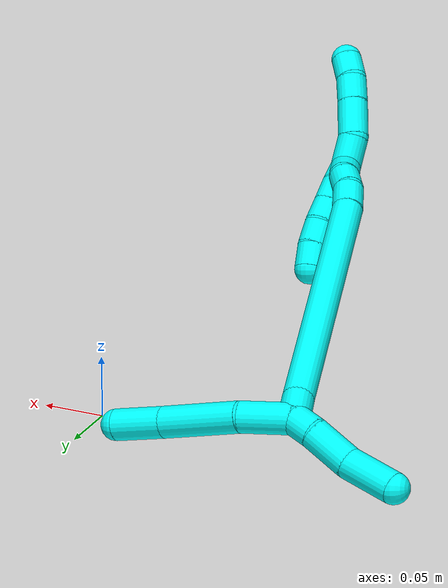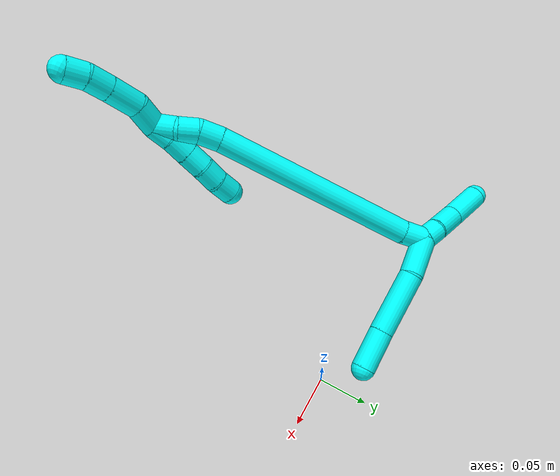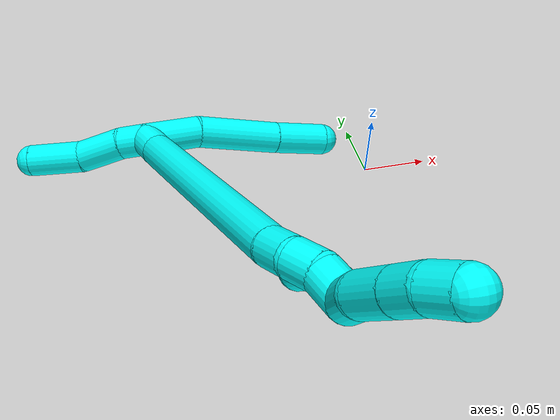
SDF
<sdf version="1.7">
 <world name="default">
  <model name="3">
   <static>0</static>
   <link name="3">
    <collision name="collision-cylinder-e_1_2_8">
     <pose>0.000321 -0.000112 -0.021295 3.13632 0.015067 2.46899</pose>
     <geometry><cylinder><radius>0.0125</radius><length>0.042595</length></cylinder></geometry>
     <surface>
      <friction><ode><mu>1.16</mu><mu2>1.16</mu2><slip1>0</slip1><slip2>0</slip2></ode></friction>
      <contact><ode><kp>1e+06</kp><kd>1</kd><max_vel>0</max_vel><min_depth>0.001</min_depth></ode></contact>
     </surface>
    </collision>
    <visual name="visual-cylinder-e_1_2_8">
     <pose>0.000321 -0.000112 -0.021295 3.13632 0.015067 2.46899</pose>
     <geometry><cylinder><radius>0.0125</radius><length>0.042595</length></cylinder></geometry>
     <material><ambient>0.003922 1 0.996078 1</ambient></material>
    </visual>
    <collision name="collision-cylinder-e_2_8_9">
     <pose>-0.00549 -0.002737 -0.074902 3.06399 -0.186995 -2.35652</pose>
     <geometry><cylinder><radius>0.0125</radius><length>0.06597</length></cylinder></geometry>
     <surface>
      <friction><ode><mu>1.16</mu><mu2>1.16</mu2><slip1>0</slip1><slip2>0</slip2></ode></friction>
      <contact><ode><kp>1e+06</kp><kd>1</kd><max_vel>0</max_vel><min_depth>0.001</min_depth></ode></contact>
     </surface>
    </collision>
    <visual name="visual-cylinder-e_2_8_9">
     <pose>-0.00549 -0.002737 -0.074902 3.06399 -0.186995 -2.35652</pose>
     <geometry><cylinder><radius>0.0125</radius><length>0.06597</length></cylinder></geometry>
     <material><ambient>0.003922 1 0.996078 1</ambient></material>
    </visual>
    <collision name="collision-cylinder-e_3_9_6">
     <pose>-0.014763 -0.006477 -0.127656 3.08165 -0.152162 -2.3922</pose>
     <geometry><cylinder><radius>0.0125</radius><length>0.041435</length></cylinder></geometry>
     <surface>
      <friction><ode><mu>1.16</mu><mu2>1.16</mu2><slip1>0</slip1><slip2>0</slip2></ode></friction>
      <contact><ode><kp>1e+06</kp><kd>1</kd><max_vel>0</max_vel><min_depth>0.001</min_depth></ode></contact>
     </surface>
    </collision>
    <visual name="visual-cylinder-e_3_9_6">
     <pose>-0.014763 -0.006477 -0.127656 3.08165 -0.152162 -2.3922</pose>
     <geometry><cylinder><radius>0.0125</radius><length>0.041435</length></cylinder></geometry>
     <material><ambient>0.003922 1 0.996078 1</ambient></material>
    </visual>
    <collision name="collision-cylinder-e_1_2_10">
     <pose>-0.001948 0.005399 0.008647 -0.558154 -0.188814 0.054254</pose>
     <geometry><cylinder><radius>0.0125</radius><length>0.020758</length></cylinder></geometry>
     <surface>
      <friction><ode><mu>1.16</mu><mu2>1.16</mu2><slip1>0</slip1><slip2>0</slip2></ode></friction>
      <contact><ode><kp>1e+06</kp><kd>1</kd><max_vel>0</max_vel><min_depth>0.001</min_depth></ode></contact>
     </surface>
    </collision>
    <visual name="visual-cylinder-e_1_2_10">
     <pose>-0.001948 0.005399 0.008647 -0.558154 -0.188814 0.054254</pose>
     <geometry><cylinder><radius>0.0125</radius><length>0.020758</length></cylinder></geometry>
     <material><ambient>0.003922 1 0.996078 1</ambient></material>
    </visual>
    <collision name="collision-cylinder-e_2_10_11">
     <pose>-0.010244 0.019826 0.03162 -0.562308 -0.358657 0.104611</pose>
     <geometry><cylinder><radius>0.0125</radius><length>0.036167</length></cylinder></geometry>
     <surface>
      <friction><ode><mu>1.16</mu><mu2>1.16</mu2><slip1>0</slip1><slip2>0</slip2></ode></friction>
      <contact><ode><kp>1e+06</kp><kd>1</kd><max_vel>0</max_vel><min_depth>0.001</min_depth></ode></contact>
     </surface>
    </collision>
    <visual name="visual-cylinder-e_2_10_11">
     <pose>-0.010244 0.019826 0.03162 -0.562308 -0.358657 0.104611</pose>
     <geometry><cylinder><radius>0.0125</radius><length>0.036167</length></cylinder></geometry>
     <material><ambient>0.003922 1 0.996078 1</ambient></material>
    </visual>
    <collision name="collision-cylinder-e_3_11_5">
     <pose>-0.018818 0.039059 0.064781 -0.496566 -0.103591 0.026284</pose>
     <geometry><cylinder><radius>0.0125</radius><length>0.043075</length></cylinder></geometry>
     <surface>
      <friction><ode><mu>1.16</mu><mu2>1.16</mu2><slip1>0</slip1><slip2>0</slip2></ode></friction>
      <contact><ode><kp>1e+06</kp><kd>1</kd><max_vel>0</max_vel><min_depth>0.001</min_depth></ode></contact>
     </surface>
    </collision>
    <visual name="visual-cylinder-e_3_11_5">
     <pose>-0.018818 0.039059 0.064781 -0.496566 -0.103591 0.026284</pose>
     <geometry><cylinder><radius>0.0125</radius><length>0.043075</length></cylinder></geometry>
     <material><ambient>0.003922 1 0.996078 1</ambient></material>
    </visual>
    <collision name="collision-cylinder-e_1_2_12">
     <pose>-0.001274 -0.011911 -0.001284 1.6782 -0.105943 -0.117953</pose>
     <geometry><cylinder><radius>0.0125</radius><length>0.024095</length></cylinder></geometry>
     <surface>
      <friction><ode><mu>1.16</mu><mu2>1.16</mu2><slip1>0</slip1><slip2>0</slip2></ode></friction>
      <contact><ode><kp>1e+06</kp><kd>1</kd><max_vel>0</max_vel><min_depth>0.001</min_depth></ode></contact>
     </surface>
    </collision>
    <visual name="visual-cylinder-e_1_2_12">
     <pose>-0.001274 -0.011911 -0.001284 1.6782 -0.105943 -0.117953</pose>
     <geometry><cylinder><radius>0.0125</radius><length>0.024095</length></cylinder></geometry>
     <material><ambient>0.003922 1 0.996078 1</ambient></material>
    </visual>
    <collision name="collision-cylinder-e_2_12_13">
     <pose>0.001362 -0.129363 -0.004519 1.58928 0.037026 0.037717</pose>
     <geometry><cylinder><radius>0.0125</radius><length>0.211263</length></cylinder></geometry>
     <surface>
      <friction><ode><mu>1.16</mu><mu2>1.16</mu2><slip1>0</slip1><slip2>0</slip2></ode></friction>
      <contact><ode><kp>1e+06</kp><kd>1</kd><max_vel>0</max_vel><min_depth>0.001</min_depth></ode></contact>
     </surface>
    </collision>
    <visual name="visual-cylinder-e_2_12_13">
     <pose>0.001362 -0.129363 -0.004519 1.58928 0.037026 0.037717</pose>
     <geometry><cylinder><radius>0.0125</radius><length>0.211263</length></cylinder></geometry>
     <material><ambient>0.003922 1 0.996078 1</ambient></material>
    </visual>
    <collision name="collision-cylinder-e_3_13_14">
     <pose>0.00626 -0.245901 -0.008242 1.73059 0.088373 0.103731</pose>
     <geometry><cylinder><radius>0.0125</radius><length>0.022366</length></cylinder></geometry>
     <surface>
      <friction><ode><mu>1.16</mu><mu2>1.16</mu2><slip1>0</slip1><slip2>0</slip2></ode></friction>
      <contact><ode><kp>1e+06</kp><kd>1</kd><max_vel>0</max_vel><min_depth>0.001</min_depth></ode></contact>
     </surface>
    </collision>
    <visual name="visual-cylinder-e_3_13_14">
     <pose>0.00626 -0.245901 -0.008242 1.73059 0.088373 0.103731</pose>
     <geometry><cylinder><radius>0.0125</radius><length>0.022366</length></cylinder></geometry>
     <material><ambient>0.003922 1 0.996078 1</ambient></material>
    </visual>
    <collision name="collision-cylinder-e_4_14_15">
     <pose>0.006444 -0.266205 -0.013858 1.9624 -0.079548 -0.118833</pose>
     <geometry><cylinder><radius>0.0125</radius><length>0.020203</length></cylinder></geometry>
     <surface>
      <friction><ode><mu>1.16</mu><mu2>1.16</mu2><slip1>0</slip1><slip2>0</slip2></ode></friction>
      <contact><ode><kp>1e+06</kp><kd>1</kd><max_vel>0</max_vel><min_depth>0.001</min_depth></ode></contact>
     </surface>
    </collision>
    <visual name="visual-cylinder-e_4_14_15">
     <pose>0.006444 -0.266205 -0.013858 1.9624 -0.079548 -0.118833</pose>
     <geometry><cylinder><radius>0.0125</radius><length>0.020203</length></cylinder></geometry>
     <material><ambient>0.003922 1 0.996078 1</ambient></material>
    </visual>
    <collision name="collision-cylinder-e_5_15_1">
     <pose>0.001823 -0.285616 -0.01997 1.79167 -0.353252 -0.438832</pose>
     <geometry><cylinder><radius>0.0125</radius><length>0.022074</length></cylinder></geometry>
     <surface>
      <friction><ode><mu>1.16</mu><mu2>1.16</mu2><slip1>0</slip1><slip2>0</slip2></ode></friction>
      <contact><ode><kp>1e+06</kp><kd>1</kd><max_vel>0</max_vel><min_depth>0.001</min_depth></ode></contact>
     </surface>
    </collision>
    <visual name="visual-cylinder-e_5_15_1">
     <pose>0.001823 -0.285616 -0.01997 1.79167 -0.353252 -0.438832</pose>
     <geometry><cylinder><radius>0.0125</radius><length>0.022074</length></cylinder></geometry>
     <material><ambient>0.003922 1 0.996078 1</ambient></material>
    </visual>
    <collision name="collision-cylinder-e_1_1_16">
     <pose>-0.002738 -0.28588 -0.023855 -1.73359 -0.07432 0.087507</pose>
     <geometry><cylinder><radius>0.0125</radius><length>0.02</length></cylinder></geometry>
     <surface>
      <friction><ode><mu>1.16</mu><mu2>1.16</mu2><slip1>0</slip1><slip2>0</slip2></ode></friction>
      <contact><ode><kp>1e+06</kp><kd>1</kd><max_vel>0</max_vel><min_depth>0.001</min_depth></ode></contact>
     </surface>
    </collision>
    <visual name="visual-cylinder-e_1_1_16">
     <pose>-0.002738 -0.28588 -0.023855 -1.73359 -0.07432 0.087507</pose>
     <geometry><cylinder><radius>0.0125</radius><length>0.02</length></cylinder></geometry>
     <material><ambient>0.003922 1 0.996078 1</ambient></material>
    </visual>
    <collision name="collision-cylinder-e_2_16_17">
     <pose>-0.006089 -0.266613 -0.027555 -1.78839 -0.263955 0.327646</pose>
     <geometry><cylinder><radius>0.0125</radius><length>0.02</length></cylinder></geometry>
     <surface>
      <friction><ode><mu>1.16</mu><mu2>1.16</mu2><slip1>0</slip1><slip2>0</slip2></ode></friction>
      <contact><ode><kp>1e+06</kp><kd>1</kd><max_vel>0</max_vel><min_depth>0.001</min_depth></ode></contact>
     </surface>
    </collision>
    <visual name="visual-cylinder-e_2_16_17">
     <pose>-0.006089 -0.266613 -0.027555 -1.78839 -0.263955 0.327646</pose>
     <geometry><cylinder><radius>0.0125</radius><length>0.02</length></cylinder></geometry>
     <material><ambient>0.003922 1 0.996078 1</ambient></material>
    </visual>
    <collision name="collision-cylinder-e_3_17_18">
     <pose>-0.010991 -0.247672 -0.031691 -1.78322 -0.23135 0.28589</pose>
     <geometry><cylinder><radius>0.0125</radius><length>0.02</length></cylinder></geometry>
     <surface>
      <friction><ode><mu>1.16</mu><mu2>1.16</mu2><slip1>0</slip1><slip2>0</slip2></ode></friction>
      <contact><ode><kp>1e+06</kp><kd>1</kd><max_vel>0</max_vel><min_depth>0.001</min_depth></ode></contact>
     </surface>
    </collision>
    <visual name="visual-cylinder-e_3_17_18">
     <pose>-0.010991 -0.247672 -0.031691 -1.78322 -0.23135 0.28589</pose>
     <geometry><cylinder><radius>0.0125</radius><length>0.02</length></cylinder></geometry>
     <material><ambient>0.003922 1 0.996078 1</ambient></material>
    </visual>
    <collision name="collision-cylinder-e_4_18_19">
     <pose>-0.017229 -0.229136 -0.035488 -1.76188 -0.405531 0.488398</pose>
     <geometry><cylinder><radius>0.0125</radius><length>0.02</length></cylinder></geometry>
     <surface>
      <friction><ode><mu>1.16</mu><mu2>1.16</mu2><slip1>0</slip1><slip2>0</slip2></ode></friction>
      <contact><ode><kp>1e+06</kp><kd>1</kd><max_vel>0</max_vel><min_depth>0.001</min_depth></ode></contact>
     </surface>
    </collision>
    <visual name="visual-cylinder-e_4_18_19">
     <pose>-0.017229 -0.229136 -0.035488 -1.76188 -0.405531 0.488398</pose>
     <geometry><cylinder><radius>0.0125</radius><length>0.02</length></cylinder></geometry>
     <material><ambient>0.003922 1 0.996078 1</ambient></material>
    </visual>
    <collision name="collision-cylinder-e_5_19_4">
     <pose>-0.02585 -0.21128 -0.037553 -1.60699 -0.486527 0.503728</pose>
     <geometry><cylinder><radius>0.0125</radius><length>0.02</length></cylinder></geometry>
     <surface>
      <friction><ode><mu>1.16</mu><mu2>1.16</mu2><slip1>0</slip1><slip2>0</slip2></ode></friction>
      <contact><ode><kp>1e+06</kp><kd>1</kd><max_vel>0</max_vel><min_depth>0.001</min_depth></ode></contact>
     </surface>
    </collision>
    <visual name="visual-cylinder-e_5_19_4">
     <pose>-0.02585 -0.21128 -0.037553 -1.60699 -0.486527 0.503728</pose>
     <geometry><cylinder><radius>0.0125</radius><length>0.02</length></cylinder></geometry>
     <material><ambient>0.003922 1 0.996078 1</ambient></material>
    </visual>
    <collision name="collision-cylinder-e_1_1_20">
     <pose>0.005388 -0.30629 -0.019779 1.34213 0.597439 0.479582</pose>
     <geometry><cylinder><radius>0.0125</radius><length>0.026251</length></cylinder></geometry>
     <surface>
      <friction><ode><mu>1.16</mu><mu2>1.16</mu2><slip1>0</slip1><slip2>0</slip2></ode></friction>
      <contact><ode><kp>1e+06</kp><kd>1</kd><max_vel>0</max_vel><min_depth>0.001</min_depth></ode></contact>
     </surface>
    </collision>
    <visual name="visual-cylinder-e_1_1_20">
     <pose>0.005388 -0.30629 -0.019779 1.34213 0.597439 0.479582</pose>
     <geometry><cylinder><radius>0.0125</radius><length>0.026251</length></cylinder></geometry>
     <material><ambient>0.003922 1 0.996078 1</ambient></material>
    </visual>
    <collision name="collision-cylinder-e_2_20_21">
     <pose>0.019987 -0.330699 -0.01915 1.70235 0.477057 0.541288</pose>
     <geometry><cylinder><radius>0.0125</radius><length>0.03143</length></cylinder></geometry>
     <surface>
      <friction><ode><mu>1.16</mu><mu2>1.16</mu2><slip1>0</slip1><slip2>0</slip2></ode></friction>
      <contact><ode><kp>1e+06</kp><kd>1</kd><max_vel>0</max_vel><min_depth>0.001</min_depth></ode></contact>
     </surface>
    </collision>
    <visual name="visual-cylinder-e_2_20_21">
     <pose>0.019987 -0.330699 -0.01915 1.70235 0.477057 0.541288</pose>
     <geometry><cylinder><radius>0.0125</radius><length>0.03143</length></cylinder></geometry>
     <material><ambient>0.003922 1 0.996078 1</ambient></material>
    </visual>
    <collision name="collision-cylinder-e_3_21_22">
     <pose>0.032182 -0.35409 -0.022642 1.74297 0.474413 0.559767</pose>
     <geometry><cylinder><radius>0.0125</radius><length>0.021798</length></cylinder></geometry>
     <surface>
      <friction><ode><mu>1.16</mu><mu2>1.16</mu2><slip1>0</slip1><slip2>0</slip2></ode></friction>
      <contact><ode><kp>1e+06</kp><kd>1</kd><max_vel>0</max_vel><min_depth>0.001</min_depth></ode></contact>
     </surface>
    </collision>
    <visual name="visual-cylinder-e_3_21_22">
     <pose>0.032182 -0.35409 -0.022642 1.74297 0.474413 0.559767</pose>
     <geometry><cylinder><radius>0.0125</radius><length>0.021798</length></cylinder></geometry>
     <material><ambient>0.003922 1 0.996078 1</ambient></material>
    </visual>
    <collision name="collision-cylinder-e_4_22_3">
     <pose>0.040167 -0.372841 -0.027712 1.9257 0.297373 0.424048</pose>
     <geometry><cylinder><radius>0.0125</radius><length>0.020522</length></cylinder></geometry>
     <surface>
      <friction><ode><mu>1.16</mu><mu2>1.16</mu2><slip1>0</slip1><slip2>0</slip2></ode></friction>
      <contact><ode><kp>1e+06</kp><kd>1</kd><max_vel>0</max_vel><min_depth>0.001</min_depth></ode></contact>
     </surface>
    </collision>
    <visual name="visual-cylinder-e_4_22_3">
     <pose>0.040167 -0.372841 -0.027712 1.9257 0.297373 0.424048</pose>
     <geometry><cylinder><radius>0.0125</radius><length>0.020522</length></cylinder></geometry>
     <material><ambient>0.003922 1 0.996078 1</ambient></material>
    </visual>
    <collision name="collision-sphere-3">
     <pose>0.043174 -0.38204 -0.031122 0 -0 0</pose>
     <geometry><sphere><radius>0.0125</radius></sphere></geometry>
     <surface>
      <friction><ode><mu>1.16</mu><mu2>1.16</mu2><slip1>0</slip1><slip2>0</slip2></ode></friction>
      <contact><ode><kp>1e+06</kp><kd>1</kd><max_vel>0</max_vel><min_depth>0.001</min_depth></ode></contact>
     </surface>
    </collision>
    <visual name="visual-sphere-3">
     <pose>0.043174 -0.38204 -0.031122 0 -0 0</pose>
     <geometry><sphere><radius>0.0125</radius></sphere></geometry>
     <material><ambient>0.003922 1 0.996078 1</ambient></material>
    </visual>
    <collision name="collision-sphere-22">
     <pose>0.037161 -0.363642 -0.024303 0 -0 0</pose>
     <geometry><sphere><radius>0.0125</radius></sphere></geometry>
     <surface>
      <friction><ode><mu>1.16</mu><mu2>1.16</mu2><slip1>0</slip1><slip2>0</slip2></ode></friction>
      <contact><ode><kp>1e+06</kp><kd>1</kd><max_vel>0</max_vel><min_depth>0.001</min_depth></ode></contact>
     </surface>
    </collision>
    <visual name="visual-sphere-22">
     <pose>0.037161 -0.363642 -0.024303 0 -0 0</pose>
     <geometry><sphere><radius>0.0125</radius></sphere></geometry>
     <material><ambient>0.003922 1 0.996078 1</ambient></material>
    </visual>
    <collision name="collision-sphere-21">
     <pose>0.027203 -0.344538 -0.020981 0 -0 0</pose>
     <geometry><sphere><radius>0.0125</radius></sphere></geometry>
     <surface>
      <friction><ode><mu>1.16</mu><mu2>1.16</mu2><slip1>0</slip1><slip2>0</slip2></ode></friction>
      <contact><ode><kp>1e+06</kp><kd>1</kd><max_vel>0</max_vel><min_depth>0.001</min_depth></ode></contact>
     </surface>
    </collision>
    <visual name="visual-sphere-21">
     <pose>0.027203 -0.344538 -0.020981 0 -0 0</pose>
     <geometry><sphere><radius>0.0125</radius></sphere></geometry>
     <material><ambient>0.003922 1 0.996078 1</ambient></material>
    </visual>
    <collision name="collision-sphere-20">
     <pose>0.012772 -0.316859 -0.017319 0 -0 0</pose>
     <geometry><sphere><radius>0.0125</radius></sphere></geometry>
     <surface>
      <friction><ode><mu>1.16</mu><mu2>1.16</mu2><slip1>0</slip1><slip2>0</slip2></ode></friction>
      <contact><ode><kp>1e+06</kp><kd>1</kd><max_vel>0</max_vel><min_depth>0.001</min_depth></ode></contact>
     </surface>
    </collision>
    <visual name="visual-sphere-20">
     <pose>0.012772 -0.316859 -0.017319 0 -0 0</pose>
     <geometry><sphere><radius>0.0125</radius></sphere></geometry>
     <material><ambient>0.003922 1 0.996078 1</ambient></material>
    </visual>
    <collision name="collision-sphere-4">
     <pose>-0.030525 -0.202447 -0.037873 0 -0 0</pose>
     <geometry><sphere><radius>0.0125</radius></sphere></geometry>
     <surface>
      <friction><ode><mu>1.16</mu><mu2>1.16</mu2><slip1>0</slip1><slip2>0</slip2></ode></friction>
      <contact><ode><kp>1e+06</kp><kd>1</kd><max_vel>0</max_vel><min_depth>0.001</min_depth></ode></contact>
     </surface>
    </collision>
    <visual name="visual-sphere-4">
     <pose>-0.030525 -0.202447 -0.037873 0 -0 0</pose>
     <geometry><sphere><radius>0.0125</radius></sphere></geometry>
     <material><ambient>0.003922 1 0.996078 1</ambient></material>
    </visual>
    <collision name="collision-sphere-11">
     <pose>-0.016591 0.028853 0.045946 0 -0 0</pose>
     <geometry><sphere><radius>0.0125</radius></sphere></geometry>
     <surface>
      <friction><ode><mu>1.16</mu><mu2>1.16</mu2><slip1>0</slip1><slip2>0</slip2></ode></friction>
      <contact><ode><kp>1e+06</kp><kd>1</kd><max_vel>0</max_vel><min_depth>0.001</min_depth></ode></contact>
     </surface>
    </collision>
    <visual name="visual-sphere-11">
     <pose>-0.016591 0.028853 0.045946 0 -0 0</pose>
     <geometry><sphere><radius>0.0125</radius></sphere></geometry>
     <material><ambient>0.003922 1 0.996078 1</ambient></material>
    </visual>
    <collision name="collision-sphere-10">
     <pose>-0.003896 0.010798 0.017294 0 -0 0</pose>
     <geometry><sphere><radius>0.0125</radius></sphere></geometry>
     <surface>
      <friction><ode><mu>1.16</mu><mu2>1.16</mu2><slip1>0</slip1><slip2>0</slip2></ode></friction>
      <contact><ode><kp>1e+06</kp><kd>1</kd><max_vel>0</max_vel><min_depth>0.001</min_depth></ode></contact>
     </surface>
    </collision>
    <visual name="visual-sphere-10">
     <pose>-0.003896 0.010798 0.017294 0 -0 0</pose>
     <geometry><sphere><radius>0.0125</radius></sphere></geometry>
     <material><ambient>0.003922 1 0.996078 1</ambient></material>
    </visual>
    <collision name="collision-sphere-6">
     <pose>-0.017903 -0.007703 -0.148097 0 -0 0</pose>
     <geometry><sphere><radius>0.0125</radius></sphere></geometry>
     <surface>
      <friction><ode><mu>1.16</mu><mu2>1.16</mu2><slip1>0</slip1><slip2>0</slip2></ode></friction>
      <contact><ode><kp>1e+06</kp><kd>1</kd><max_vel>0</max_vel><min_depth>0.001</min_depth></ode></contact>
     </surface>
    </collision>
    <visual name="visual-sphere-6">
     <pose>-0.017903 -0.007703 -0.148097 0 -0 0</pose>
     <geometry><sphere><radius>0.0125</radius></sphere></geometry>
     <material><ambient>0.003922 1 0.996078 1</ambient></material>
    </visual>
    <collision name="collision-sphere-9">
     <pose>-0.011622 -0.00525 -0.107214 0 -0 0</pose>
     <geometry><sphere><radius>0.0125</radius></sphere></geometry>
     <surface>
      <friction><ode><mu>1.16</mu><mu2>1.16</mu2><slip1>0</slip1><slip2>0</slip2></ode></friction>
      <contact><ode><kp>1e+06</kp><kd>1</kd><max_vel>0</max_vel><min_depth>0.001</min_depth></ode></contact>
     </surface>
    </collision>
    <visual name="visual-sphere-9">
     <pose>-0.011622 -0.00525 -0.107214 0 -0 0</pose>
     <geometry><sphere><radius>0.0125</radius></sphere></geometry>
     <material><ambient>0.003922 1 0.996078 1</ambient></material>
    </visual>
    <collision name="collision-sphere-2">
     <geometry><sphere><radius>0.0125</radius></sphere></geometry>
     <surface>
      <friction><ode><mu>1.16</mu><mu2>1.16</mu2><slip1>0</slip1><slip2>0</slip2></ode></friction>
      <contact><ode><kp>1e+06</kp><kd>1</kd><max_vel>0</max_vel><min_depth>0.001</min_depth></ode></contact>
     </surface>
    </collision>
    <visual name="visual-sphere-2">
     <geometry><sphere><radius>0.0125</radius></sphere></geometry>
     <material><ambient>0.003922 1 0.996078 1</ambient></material>
    </visual>
    <collision name="collision-sphere-19">
     <pose>-0.021174 -0.220114 -0.037234 0 -0 0</pose>
     <geometry><sphere><radius>0.0125</radius></sphere></geometry>
     <surface>
      <friction><ode><mu>1.16</mu><mu2>1.16</mu2><slip1>0</slip1><slip2>0</slip2></ode></friction>
      <contact><ode><kp>1e+06</kp><kd>1</kd><max_vel>0</max_vel><min_depth>0.001</min_depth></ode></contact>
     </surface>
    </collision>
    <visual name="visual-sphere-19">
     <pose>-0.021174 -0.220114 -0.037234 0 -0 0</pose>
     <geometry><sphere><radius>0.0125</radius></sphere></geometry>
     <material><ambient>0.003922 1 0.996078 1</ambient></material>
    </visual>
    <collision name="collision-sphere-8">
     <pose>0.000642 -0.000224 -0.042589 0 -0 0</pose>
     <geometry><sphere><radius>0.0125</radius></sphere></geometry>
     <surface>
      <friction><ode><mu>1.16</mu><mu2>1.16</mu2><slip1>0</slip1><slip2>0</slip2></ode></friction>
      <contact><ode><kp>1e+06</kp><kd>1</kd><max_vel>0</max_vel><min_depth>0.001</min_depth></ode></contact>
     </surface>
    </collision>
    <visual name="visual-sphere-8">
     <pose>0.000642 -0.000224 -0.042589 0 -0 0</pose>
     <geometry><sphere><radius>0.0125</radius></sphere></geometry>
     <material><ambient>0.003922 1 0.996078 1</ambient></material>
    </visual>
    <collision name="collision-sphere-5">
     <pose>-0.021046 0.049265 0.083616 0 -0 0</pose>
     <geometry><sphere><radius>0.0125</radius></sphere></geometry>
     <surface>
      <friction><ode><mu>1.16</mu><mu2>1.16</mu2><slip1>0</slip1><slip2>0</slip2></ode></friction>
      <contact><ode><kp>1e+06</kp><kd>1</kd><max_vel>0</max_vel><min_depth>0.001</min_depth></ode></contact>
     </surface>
    </collision>
    <visual name="visual-sphere-5">
     <pose>-0.021046 0.049265 0.083616 0 -0 0</pose>
     <geometry><sphere><radius>0.0125</radius></sphere></geometry>
     <material><ambient>0.003922 1 0.996078 1</ambient></material>
    </visual>
    <collision name="collision-sphere-12">
     <pose>-0.002548 -0.023821 -0.002568 0 -0 0</pose>
     <geometry><sphere><radius>0.0125</radius></sphere></geometry>
     <surface>
      <friction><ode><mu>1.16</mu><mu2>1.16</mu2><slip1>0</slip1><slip2>0</slip2></ode></friction>
      <contact><ode><kp>1e+06</kp><kd>1</kd><max_vel>0</max_vel><min_depth>0.001</min_depth></ode></contact>
     </surface>
    </collision>
    <visual name="visual-sphere-12">
     <pose>-0.002548 -0.023821 -0.002568 0 -0 0</pose>
     <geometry><sphere><radius>0.0125</radius></sphere></geometry>
     <material><ambient>0.003922 1 0.996078 1</ambient></material>
    </visual>
    <collision name="collision-sphere-13">
     <pose>0.005273 -0.234904 -0.00647 0 -0 0</pose>
     <geometry><sphere><radius>0.0125</radius></sphere></geometry>
     <surface>
      <friction><ode><mu>1.16</mu><mu2>1.16</mu2><slip1>0</slip1><slip2>0</slip2></ode></friction>
      <contact><ode><kp>1e+06</kp><kd>1</kd><max_vel>0</max_vel><min_depth>0.001</min_depth></ode></contact>
     </surface>
    </collision>
    <visual name="visual-sphere-13">
     <pose>0.005273 -0.234904 -0.00647 0 -0 0</pose>
     <geometry><sphere><radius>0.0125</radius></sphere></geometry>
     <material><ambient>0.003922 1 0.996078 1</ambient></material>
    </visual>
    <collision name="collision-sphere-14">
     <pose>0.007247 -0.256898 -0.010015 0 -0 0</pose>
     <geometry><sphere><radius>0.0125</radius></sphere></geometry>
     <surface>
      <friction><ode><mu>1.16</mu><mu2>1.16</mu2><slip1>0</slip1><slip2>0</slip2></ode></friction>
      <contact><ode><kp>1e+06</kp><kd>1</kd><max_vel>0</max_vel><min_depth>0.001</min_depth></ode></contact>
     </surface>
    </collision>
    <visual name="visual-sphere-14">
     <pose>0.007247 -0.256898 -0.010015 0 -0 0</pose>
     <geometry><sphere><radius>0.0125</radius></sphere></geometry>
     <material><ambient>0.003922 1 0.996078 1</ambient></material>
    </visual>
    <collision name="collision-sphere-15">
     <pose>0.005641 -0.275513 -0.017701 0 -0 0</pose>
     <geometry><sphere><radius>0.0125</radius></sphere></geometry>
     <surface>
      <friction><ode><mu>1.16</mu><mu2>1.16</mu2><slip1>0</slip1><slip2>0</slip2></ode></friction>
      <contact><ode><kp>1e+06</kp><kd>1</kd><max_vel>0</max_vel><min_depth>0.001</min_depth></ode></contact>
     </surface>
    </collision>
    <visual name="visual-sphere-15">
     <pose>0.005641 -0.275513 -0.017701 0 -0 0</pose>
     <geometry><sphere><radius>0.0125</radius></sphere></geometry>
     <material><ambient>0.003922 1 0.996078 1</ambient></material>
    </visual>
    <collision name="collision-sphere-1">
     <pose>-0.001995 -0.29572 -0.022238 0 -0 0</pose>
     <geometry><sphere><radius>0.0125</radius></sphere></geometry>
     <surface>
      <friction><ode><mu>1.16</mu><mu2>1.16</mu2><slip1>0</slip1><slip2>0</slip2></ode></friction>
      <contact><ode><kp>1e+06</kp><kd>1</kd><max_vel>0</max_vel><min_depth>0.001</min_depth></ode></contact>
     </surface>
    </collision>
    <visual name="visual-sphere-1">
     <pose>-0.001995 -0.29572 -0.022238 0 -0 0</pose>
     <geometry><sphere><radius>0.0125</radius></sphere></geometry>
     <material><ambient>0.003922 1 0.996078 1</ambient></material>
    </visual>
    <collision name="collision-sphere-18">
     <pose>-0.013284 -0.238158 -0.033743 0 -0 0</pose>
     <geometry><sphere><radius>0.0125</radius></sphere></geometry>
     <surface>
      <friction><ode><mu>1.16</mu><mu2>1.16</mu2><slip1>0</slip1><slip2>0</slip2></ode></friction>
      <contact><ode><kp>1e+06</kp><kd>1</kd><max_vel>0</max_vel><min_depth>0.001</min_depth></ode></contact>
     </surface>
    </collision>
    <visual name="visual-sphere-18">
     <pose>-0.013284 -0.238158 -0.033743 0 -0 0</pose>
     <geometry><sphere><radius>0.0125</radius></sphere></geometry>
     <material><ambient>0.003922 1 0.996078 1</ambient></material>
    </visual>
    <collision name="collision-sphere-16">
     <pose>-0.00348 -0.276039 -0.025471 0 -0 0</pose>
     <geometry><sphere><radius>0.0125</radius></sphere></geometry>
     <surface>
      <friction><ode><mu>1.16</mu><mu2>1.16</mu2><slip1>0</slip1><slip2>0</slip2></ode></friction>
      <contact><ode><kp>1e+06</kp><kd>1</kd><max_vel>0</max_vel><min_depth>0.001</min_depth></ode></contact>
     </surface>
    </collision>
    <visual name="visual-sphere-16">
     <pose>-0.00348 -0.276039 -0.025471 0 -0 0</pose>
     <geometry><sphere><radius>0.0125</radius></sphere></geometry>
     <material><ambient>0.003922 1 0.996078 1</ambient></material>
    </visual>
    <collision name="collision-sphere-17">
     <pose>-0.008698 -0.257187 -0.029639 0 -0 0</pose>
     <geometry><sphere><radius>0.0125</radius></sphere></geometry>
     <surface>
      <friction><ode><mu>1.16</mu><mu2>1.16</mu2><slip1>0</slip1><slip2>0</slip2></ode></friction>
      <contact><ode><kp>1e+06</kp><kd>1</kd><max_vel>0</max_vel><min_depth>0.001</min_depth></ode></contact>
     </surface>
    </collision>
    <visual name="visual-sphere-17">
     <pose>-0.008698 -0.257187 -0.029639 0 -0 0</pose>
     <geometry><sphere><radius>0.0125</radius></sphere></geometry>
     <material><ambient>0.003922 1 0.996078 1</ambient></material>
    </visual>
    <inertial>
     <pose>-0.000769 -0.135142 -0.018962 0 -0 0</pose>
     <mass>0.75</mass>
     <inertia>
      <ixx>0.000814</ixx>
      <ixy>0</ixy>
      <ixz>0</ixz>
      <iyy>2.9e-05</iyy>
      <iyz>0</iyz>
      <izz>0.000766</izz>
     </inertia>
    </inertial>
   </link>
   <pose>-0.174916 0.0288 0.040946 -1.28174 -1.18127 1.42568</pose>
  </model>
 </world>
</sdf>
